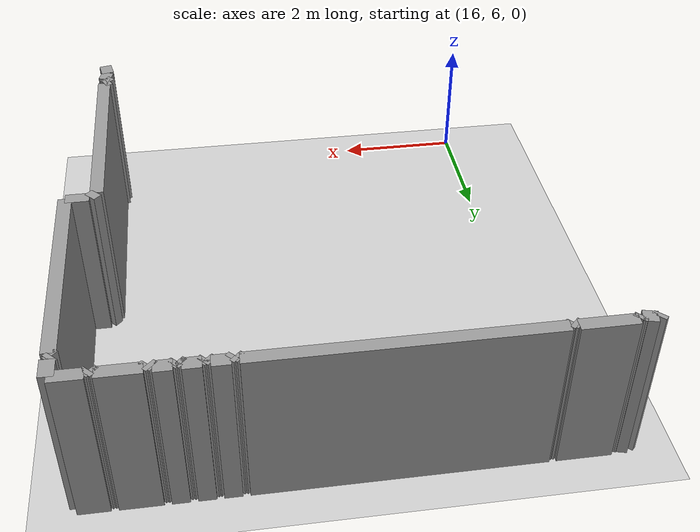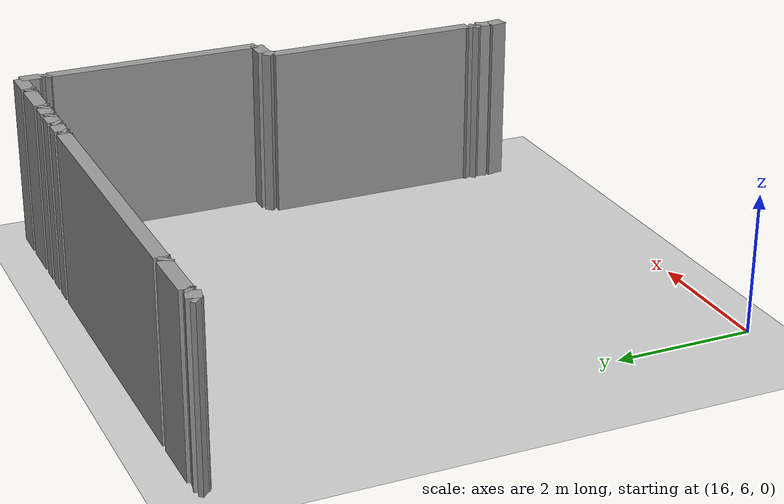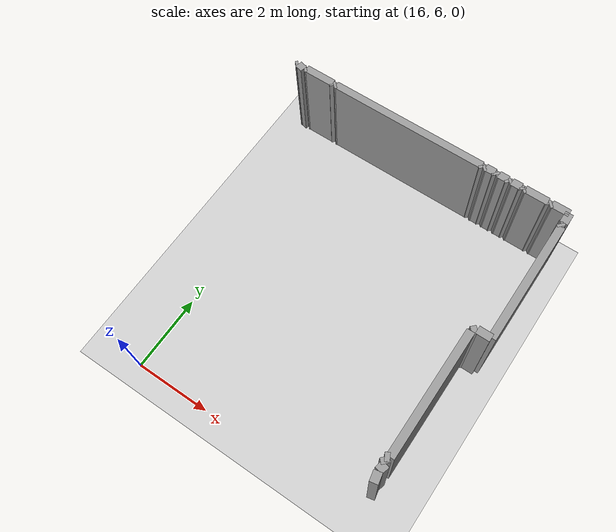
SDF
<sdf version="1.4">
 <world name="1_wall">
  <model name="ground_plane">
   <static>1</static>
   <link name="link">
    <collision name="collision">
     <geometry><plane><normal>0 0 1</normal><size>1000 1000</size></plane></geometry>
     <surface><friction><ode><mu>100</mu><mu2>50</mu2></ode></friction></surface>
    </collision>
    <visual name="visual">
     <cast_shadows>0</cast_shadows>
     <geometry><plane><normal>0 0 1</normal><size>10000 10000</size></plane></geometry>
     <material>
      <script><uri>file://media/materials/scripts/gazebo.material</uri><name>Gazebo/Grey</name></script>
     </material>
    </visual>
    <velocity_decay><linear>0</linear><angular>0</angular></velocity_decay>
   </link>
  </model>
  <model name="Wall_464">
   <static>1</static>
   <link name="Wall_464">
    <collision name="Wall_Collision_464">
     <geometry><box><size>0.0707106781186545 0.2 2.5</size></box></geometry>
     <pose>0 0 1.25 0 -0 0</pose>
    </collision>
    <visual name="Wall_Visual_464">
     <pose>0 0 1.25 0 -0 0</pose>
     <geometry><box><size>0.0707106781186545 0.2 2.5</size></box></geometry>
     <material>
      <script><uri>file://media/materials/scripts/gazebo.material</uri><name>Gazebo/Grey</name></script>
     </material>
    </visual>
    <velocity_decay><linear>0</linear><angular>0</angular></velocity_decay>
    <pose>15.175 13.975000000000001 0 0 0 0.7853981633974305</pose>
   </link>
  </model>
  <model name="Wall_465">
   <static>1</static>
   <link name="Wall_465">
    <collision name="Wall_Collision_465">
     <geometry><box><size>0.20615528128088206 0.2 2.5</size></box></geometry>
     <pose>0 0 1.25 0 -0 0</pose>
    </collision>
    <visual name="Wall_Visual_465">
     <pose>0 0 1.25 0 -0 0</pose>
     <geometry><box><size>0.20615528128088206 0.2 2.5</size></box></geometry>
     <material>
      <script><uri>file://media/materials/scripts/gazebo.material</uri><name>Gazebo/Grey</name></script>
     </material>
    </visual>
    <velocity_decay><linear>0</linear><angular>0</angular></velocity_decay>
    <pose>15.3 13.975000000000001 0 0 0 -0.24497866312685998</pose>
   </link>
  </model>
  <model name="Wall_466">
   <static>1</static>
   <link name="Wall_466">
    <collision name="Wall_Collision_466">
     <geometry><box><size>0.0707106781186545 0.2 2.5</size></box></geometry>
     <pose>0 0 1.25 0 -0 0</pose>
    </collision>
    <visual name="Wall_Visual_466">
     <pose>0 0 1.25 0 -0 0</pose>
     <geometry><box><size>0.0707106781186545 0.2 2.5</size></box></geometry>
     <material>
      <script><uri>file://media/materials/scripts/gazebo.material</uri><name>Gazebo/Grey</name></script>
     </material>
    </visual>
    <velocity_decay><linear>0</linear><angular>0</angular></velocity_decay>
    <pose>15.425 13.975000000000001 0 0 0 0.7853981633974305</pose>
   </link>
  </model>
  <model name="Wall_467">
   <static>1</static>
   <link name="Wall_467">
    <collision name="Wall_Collision_467">
     <geometry><box><size>0.7999999999999989 0.2 2.5</size></box></geometry>
     <pose>0 0 1.25 0 -0 0</pose>
    </collision>
    <visual name="Wall_Visual_467">
     <pose>0 0 1.25 0 -0 0</pose>
     <geometry><box><size>0.7999999999999989 0.2 2.5</size></box></geometry>
     <material>
      <script><uri>file://media/materials/scripts/gazebo.material</uri><name>Gazebo/Grey</name></script>
     </material>
    </visual>
    <velocity_decay><linear>0</linear><angular>0</angular></velocity_decay>
    <pose>15.850000000000001 14.0 0 0 0 0.0</pose>
   </link>
  </model>
  <model name="Wall_468">
   <static>1</static>
   <link name="Wall_468">
    <collision name="Wall_Collision_468">
     <geometry><box><size>0.0707106781186545 0.2 2.5</size></box></geometry>
     <pose>0 0 1.25 0 -0 0</pose>
    </collision>
    <visual name="Wall_Visual_468">
     <pose>0 0 1.25 0 -0 0</pose>
     <geometry><box><size>0.0707106781186545 0.2 2.5</size></box></geometry>
     <material>
      <script><uri>file://media/materials/scripts/gazebo.material</uri><name>Gazebo/Grey</name></script>
     </material>
    </visual>
    <velocity_decay><linear>0</linear><angular>0</angular></velocity_decay>
    <pose>16.275 13.975000000000001 0 0 0 -0.7853981633974305</pose>
   </link>
  </model>
  <model name="Wall_469">
   <static>1</static>
   <link name="Wall_469">
    <collision name="Wall_Collision_469">
     <geometry><box><size>0.0707106781186545 0.2 2.5</size></box></geometry>
     <pose>0 0 1.25 0 -0 0</pose>
    </collision>
    <visual name="Wall_Visual_469">
     <pose>0 0 1.25 0 -0 0</pose>
     <geometry><box><size>0.0707106781186545 0.2 2.5</size></box></geometry>
     <material>
      <script><uri>file://media/materials/scripts/gazebo.material</uri><name>Gazebo/Grey</name></script>
     </material>
    </visual>
    <velocity_decay><linear>0</linear><angular>0</angular></velocity_decay>
    <pose>16.325000000000003 13.975000000000001 0 0 0 0.7853981633974305</pose>
   </link>
  </model>
  <model name="Wall_470">
   <static>1</static>
   <link name="Wall_470">
    <collision name="Wall_Collision_470">
     <geometry><box><size>4.149999999999999 0.2 2.5</size></box></geometry>
     <pose>0 0 1.25 0 -0 0</pose>
    </collision>
    <visual name="Wall_Visual_470">
     <pose>0 0 1.25 0 -0 0</pose>
     <geometry><box><size>4.149999999999999 0.2 2.5</size></box></geometry>
     <material>
      <script><uri>file://media/materials/scripts/gazebo.material</uri><name>Gazebo/Grey</name></script>
     </material>
    </visual>
    <velocity_decay><linear>0</linear><angular>0</angular></velocity_decay>
    <pose>18.425 14.0 0 0 0 0.0</pose>
   </link>
  </model>
  <model name="Wall_471">
   <static>1</static>
   <link name="Wall_471">
    <collision name="Wall_Collision_471">
     <geometry><box><size>0.0707106781186545 0.2 2.5</size></box></geometry>
     <pose>0 0 1.25 0 -0 0</pose>
    </collision>
    <visual name="Wall_Visual_471">
     <pose>0 0 1.25 0 -0 0</pose>
     <geometry><box><size>0.0707106781186545 0.2 2.5</size></box></geometry>
     <material>
      <script><uri>file://media/materials/scripts/gazebo.material</uri><name>Gazebo/Grey</name></script>
     </material>
    </visual>
    <velocity_decay><linear>0</linear><angular>0</angular></velocity_decay>
    <pose>20.525 13.975000000000001 0 0 0 -0.7853981633974305</pose>
   </link>
  </model>
  <model name="Wall_472">
   <static>1</static>
   <link name="Wall_472">
    <collision name="Wall_Collision_472">
     <geometry><box><size>0.0707106781186545 0.2 2.5</size></box></geometry>
     <pose>0 0 1.25 0 -0 0</pose>
    </collision>
    <visual name="Wall_Visual_472">
     <pose>0 0 1.25 0 -0 0</pose>
     <geometry><box><size>0.0707106781186545 0.2 2.5</size></box></geometry>
     <material>
      <script><uri>file://media/materials/scripts/gazebo.material</uri><name>Gazebo/Grey</name></script>
     </material>
    </visual>
    <velocity_decay><linear>0</linear><angular>0</angular></velocity_decay>
    <pose>20.575000000000003 13.975000000000001 0 0 0 0.7853981633974305</pose>
   </link>
  </model>
  <model name="Wall_473">
   <static>1</static>
   <link name="Wall_473">
    <collision name="Wall_Collision_473">
     <geometry><box><size>0.25 0.2 2.5</size></box></geometry>
     <pose>0 0 1.25 0 -0 0</pose>
    </collision>
    <visual name="Wall_Visual_473">
     <pose>0 0 1.25 0 -0 0</pose>
     <geometry><box><size>0.25 0.2 2.5</size></box></geometry>
     <material>
      <script><uri>file://media/materials/scripts/gazebo.material</uri><name>Gazebo/Grey</name></script>
     </material>
    </visual>
    <velocity_decay><linear>0</linear><angular>0</angular></velocity_decay>
    <pose>20.725 14.0 0 0 0 0.0</pose>
   </link>
  </model>
  <model name="Wall_474">
   <static>1</static>
   <link name="Wall_474">
    <collision name="Wall_Collision_474">
     <geometry><box><size>0.0707106781186545 0.2 2.5</size></box></geometry>
     <pose>0 0 1.25 0 -0 0</pose>
    </collision>
    <visual name="Wall_Visual_474">
     <pose>0 0 1.25 0 -0 0</pose>
     <geometry><box><size>0.0707106781186545 0.2 2.5</size></box></geometry>
     <material>
      <script><uri>file://media/materials/scripts/gazebo.material</uri><name>Gazebo/Grey</name></script>
     </material>
    </visual>
    <velocity_decay><linear>0</linear><angular>0</angular></velocity_decay>
    <pose>20.875 13.975000000000001 0 0 0 -0.7853981633974305</pose>
   </link>
  </model>
  <model name="Wall_475">
   <static>1</static>
   <link name="Wall_475">
    <collision name="Wall_Collision_475">
     <geometry><box><size>0.0707106781186545 0.2 2.5</size></box></geometry>
     <pose>0 0 1.25 0 -0 0</pose>
    </collision>
    <visual name="Wall_Visual_475">
     <pose>0 0 1.25 0 -0 0</pose>
     <geometry><box><size>0.0707106781186545 0.2 2.5</size></box></geometry>
     <material>
      <script><uri>file://media/materials/scripts/gazebo.material</uri><name>Gazebo/Grey</name></script>
     </material>
    </visual>
    <velocity_decay><linear>0</linear><angular>0</angular></velocity_decay>
    <pose>20.925000000000004 13.975000000000001 0 0 0 0.7853981633974305</pose>
   </link>
  </model>
  <model name="Wall_476">
   <static>1</static>
   <link name="Wall_476">
    <collision name="Wall_Collision_476">
     <geometry><box><size>0.25 0.2 2.5</size></box></geometry>
     <pose>0 0 1.25 0 -0 0</pose>
    </collision>
    <visual name="Wall_Visual_476">
     <pose>0 0 1.25 0 -0 0</pose>
     <geometry><box><size>0.25 0.2 2.5</size></box></geometry>
     <material>
      <script><uri>file://media/materials/scripts/gazebo.material</uri><name>Gazebo/Grey</name></script>
     </material>
    </visual>
    <velocity_decay><linear>0</linear><angular>0</angular></velocity_decay>
    <pose>21.075000000000003 14.0 0 0 0 0.0</pose>
   </link>
  </model>
  <model name="Wall_477">
   <static>1</static>
   <link name="Wall_477">
    <collision name="Wall_Collision_477">
     <geometry><box><size>0.07071067811865199 0.2 2.5</size></box></geometry>
     <pose>0 0 1.25 0 -0 0</pose>
    </collision>
    <visual name="Wall_Visual_477">
     <pose>0 0 1.25 0 -0 0</pose>
     <geometry><box><size>0.07071067811865199 0.2 2.5</size></box></geometry>
     <material>
      <script><uri>file://media/materials/scripts/gazebo.material</uri><name>Gazebo/Grey</name></script>
     </material>
    </visual>
    <velocity_decay><linear>0</linear><angular>0</angular></velocity_decay>
    <pose>21.225 13.975000000000001 0 0 0 -0.785398163397466</pose>
   </link>
  </model>
  <model name="Wall_478">
   <static>1</static>
   <link name="Wall_478">
    <collision name="Wall_Collision_478">
     <geometry><box><size>0.0707106781186545 0.2 2.5</size></box></geometry>
     <pose>0 0 1.25 0 -0 0</pose>
    </collision>
    <visual name="Wall_Visual_478">
     <pose>0 0 1.25 0 -0 0</pose>
     <geometry><box><size>0.0707106781186545 0.2 2.5</size></box></geometry>
     <material>
      <script><uri>file://media/materials/scripts/gazebo.material</uri><name>Gazebo/Grey</name></script>
     </material>
    </visual>
    <velocity_decay><linear>0</linear><angular>0</angular></velocity_decay>
    <pose>21.275 13.975000000000001 0 0 0 0.7853981633974305</pose>
   </link>
  </model>
  <model name="Wall_479">
   <static>1</static>
   <link name="Wall_479">
    <collision name="Wall_Collision_479">
     <geometry><box><size>0.25 0.2 2.5</size></box></geometry>
     <pose>0 0 1.25 0 -0 0</pose>
    </collision>
    <visual name="Wall_Visual_479">
     <pose>0 0 1.25 0 -0 0</pose>
     <geometry><box><size>0.25 0.2 2.5</size></box></geometry>
     <material>
      <script><uri>file://media/materials/scripts/gazebo.material</uri><name>Gazebo/Grey</name></script>
     </material>
    </visual>
    <velocity_decay><linear>0</linear><angular>0</angular></velocity_decay>
    <pose>21.425 14.0 0 0 0 0.0</pose>
   </link>
  </model>
  <model name="Wall_480">
   <static>1</static>
   <link name="Wall_480">
    <collision name="Wall_Collision_480">
     <geometry><box><size>0.0707106781186545 0.2 2.5</size></box></geometry>
     <pose>0 0 1.25 0 -0 0</pose>
    </collision>
    <visual name="Wall_Visual_480">
     <pose>0 0 1.25 0 -0 0</pose>
     <geometry><box><size>0.0707106781186545 0.2 2.5</size></box></geometry>
     <material>
      <script><uri>file://media/materials/scripts/gazebo.material</uri><name>Gazebo/Grey</name></script>
     </material>
    </visual>
    <velocity_decay><linear>0</linear><angular>0</angular></velocity_decay>
    <pose>21.575000000000003 13.975000000000001 0 0 0 -0.7853981633974305</pose>
   </link>
  </model>
  <model name="Wall_481">
   <static>1</static>
   <link name="Wall_481">
    <collision name="Wall_Collision_481">
     <geometry><box><size>0.0707106781186545 0.2 2.5</size></box></geometry>
     <pose>0 0 1.25 0 -0 0</pose>
    </collision>
    <visual name="Wall_Visual_481">
     <pose>0 0 1.25 0 -0 0</pose>
     <geometry><box><size>0.0707106781186545 0.2 2.5</size></box></geometry>
     <material>
      <script><uri>file://media/materials/scripts/gazebo.material</uri><name>Gazebo/Grey</name></script>
     </material>
    </visual>
    <velocity_decay><linear>0</linear><angular>0</angular></velocity_decay>
    <pose>21.625 13.975000000000001 0 0 0 0.7853981633974305</pose>
   </link>
  </model>
  <model name="Wall_482">
   <static>1</static>
   <link name="Wall_482">
    <collision name="Wall_Collision_482">
     <geometry><box><size>0.5999999999999979 0.2 2.5</size></box></geometry>
     <pose>0 0 1.25 0 -0 0</pose>
    </collision>
    <visual name="Wall_Visual_482">
     <pose>0 0 1.25 0 -0 0</pose>
     <geometry><box><size>0.5999999999999979 0.2 2.5</size></box></geometry>
     <material>
      <script><uri>file://media/materials/scripts/gazebo.material</uri><name>Gazebo/Grey</name></script>
     </material>
    </visual>
    <velocity_decay><linear>0</linear><angular>0</angular></velocity_decay>
    <pose>21.950000000000003 14.0 0 0 0 0.0</pose>
   </link>
  </model>
  <model name="Wall_483">
   <static>1</static>
   <link name="Wall_483">
    <collision name="Wall_Collision_483">
     <geometry><box><size>0.0707106781186545 0.2 2.5</size></box></geometry>
     <pose>0 0 1.25 0 -0 0</pose>
    </collision>
    <visual name="Wall_Visual_483">
     <pose>0 0 1.25 0 -0 0</pose>
     <geometry><box><size>0.0707106781186545 0.2 2.5</size></box></geometry>
     <material>
      <script><uri>file://media/materials/scripts/gazebo.material</uri><name>Gazebo/Grey</name></script>
     </material>
    </visual>
    <velocity_decay><linear>0</linear><angular>0</angular></velocity_decay>
    <pose>22.275 13.975000000000001 0 0 0 -0.7853981633974305</pose>
   </link>
  </model>
  <model name="Wall_484">
   <static>1</static>
   <link name="Wall_484">
    <collision name="Wall_Collision_484">
     <geometry><box><size>0.0707106781186545 0.2 2.5</size></box></geometry>
     <pose>0 0 1.25 0 -0 0</pose>
    </collision>
    <visual name="Wall_Visual_484">
     <pose>0 0 1.25 0 -0 0</pose>
     <geometry><box><size>0.0707106781186545 0.2 2.5</size></box></geometry>
     <material>
      <script><uri>file://media/materials/scripts/gazebo.material</uri><name>Gazebo/Grey</name></script>
     </material>
    </visual>
    <velocity_decay><linear>0</linear><angular>0</angular></velocity_decay>
    <pose>22.325000000000003 13.975000000000001 0 0 0 0.7853981633974305</pose>
   </link>
  </model>
  <model name="Wall_485">
   <static>1</static>
   <link name="Wall_485">
    <collision name="Wall_Collision_485">
     <geometry><box><size>0.4499999999999993 0.2 2.5</size></box></geometry>
     <pose>0 0 1.25 0 -0 0</pose>
    </collision>
    <visual name="Wall_Visual_485">
     <pose>0 0 1.25 0 -0 0</pose>
     <geometry><box><size>0.4499999999999993 0.2 2.5</size></box></geometry>
     <material>
      <script><uri>file://media/materials/scripts/gazebo.material</uri><name>Gazebo/Grey</name></script>
     </material>
    </visual>
    <velocity_decay><linear>0</linear><angular>0</angular></velocity_decay>
    <pose>22.575000000000003 14.0 0 0 0 0.0</pose>
   </link>
  </model>
  <model name="Wall_486">
   <static>1</static>
   <link name="Wall_486">
    <collision name="Wall_Collision_486">
     <geometry><box><size>0.29999999999999893 0.2 2.5</size></box></geometry>
     <pose>0 0 1.25 0 -0 0</pose>
    </collision>
    <visual name="Wall_Visual_486">
     <pose>0 0 1.25 0 -0 0</pose>
     <geometry><box><size>0.29999999999999893 0.2 2.5</size></box></geometry>
     <material>
      <script><uri>file://media/materials/scripts/gazebo.material</uri><name>Gazebo/Grey</name></script>
     </material>
    </visual>
    <velocity_decay><linear>0</linear><angular>0</angular></velocity_decay>
    <pose>22.8 13.850000000000001 0 0 0 -1.5707963267948966</pose>
   </link>
  </model>
  <model name="Wall_487">
   <static>1</static>
   <link name="Wall_487">
    <collision name="Wall_Collision_487">
     <geometry><box><size>0.07071067811865576 0.2 2.5</size></box></geometry>
     <pose>0 0 1.25 0 -0 0</pose>
    </collision>
    <visual name="Wall_Visual_487">
     <pose>0 0 1.25 0 -0 0</pose>
     <geometry><box><size>0.07071067811865576 0.2 2.5</size></box></geometry>
     <material>
      <script><uri>file://media/materials/scripts/gazebo.material</uri><name>Gazebo/Grey</name></script>
     </material>
    </visual>
    <velocity_decay><linear>0</linear><angular>0</angular></velocity_decay>
    <pose>22.775 13.675 0 0 0 -2.356194490192345</pose>
   </link>
  </model>
  <model name="Wall_488">
   <static>1</static>
   <link name="Wall_488">
    <collision name="Wall_Collision_488">
     <geometry><box><size>0.0707106781186545 0.2 2.5</size></box></geometry>
     <pose>0 0 1.25 0 -0 0</pose>
    </collision>
    <visual name="Wall_Visual_488">
     <pose>0 0 1.25 0 -0 0</pose>
     <geometry><box><size>0.0707106781186545 0.2 2.5</size></box></geometry>
     <material>
      <script><uri>file://media/materials/scripts/gazebo.material</uri><name>Gazebo/Grey</name></script>
     </material>
    </visual>
    <velocity_decay><linear>0</linear><angular>0</angular></velocity_decay>
    <pose>22.775 13.625 0 0 0 -0.7853981633974305</pose>
   </link>
  </model>
  <model name="Wall_489">
   <static>1</static>
   <link name="Wall_489">
    <collision name="Wall_Collision_489">
     <geometry><box><size>3.200000000000001 0.2 2.5</size></box></geometry>
     <pose>0 0 1.25 0 -0 0</pose>
    </collision>
    <visual name="Wall_Visual_489">
     <pose>0 0 1.25 0 -0 0</pose>
     <geometry><box><size>3.200000000000001 0.2 2.5</size></box></geometry>
     <material>
      <script><uri>file://media/materials/scripts/gazebo.material</uri><name>Gazebo/Grey</name></script>
     </material>
    </visual>
    <velocity_decay><linear>0</linear><angular>0</angular></velocity_decay>
    <pose>22.8 12.0 0 0 0 -1.5707963267948966</pose>
   </link>
  </model>
  <model name="Wall_490">
   <static>1</static>
   <link name="Wall_490">
    <collision name="Wall_Collision_490">
     <geometry><box><size>0.34999999999999787 0.2 2.5</size></box></geometry>
     <pose>0 0 1.25 0 -0 0</pose>
    </collision>
    <visual name="Wall_Visual_490">
     <pose>0 0 1.25 0 -0 0</pose>
     <geometry><box><size>0.34999999999999787 0.2 2.5</size></box></geometry>
     <material>
      <script><uri>file://media/materials/scripts/gazebo.material</uri><name>Gazebo/Grey</name></script>
     </material>
    </visual>
    <velocity_decay><linear>0</linear><angular>0</angular></velocity_decay>
    <pose>22.625 10.4 0 0 0 3.141592653589793</pose>
   </link>
  </model>
  <model name="Wall_491">
   <static>1</static>
   <link name="Wall_491">
    <collision name="Wall_Collision_491">
     <geometry><box><size>0.14142135623731025 0.2 2.5</size></box></geometry>
     <pose>0 0 1.25 0 -0 0</pose>
    </collision>
    <visual name="Wall_Visual_491">
     <pose>0 0 1.25 0 -0 0</pose>
     <geometry><box><size>0.14142135623731025 0.2 2.5</size></box></geometry>
     <material>
      <script><uri>file://media/materials/scripts/gazebo.material</uri><name>Gazebo/Grey</name></script>
     </material>
    </visual>
    <velocity_decay><linear>0</linear><angular>0</angular></velocity_decay>
    <pose>22.400000000000002 10.350000000000001 0 0 0 -2.3561944901923537</pose>
   </link>
  </model>
  <model name="Wall_492">
   <static>1</static>
   <link name="Wall_492">
    <collision name="Wall_Collision_492">
     <geometry><box><size>3.2 0.2 2.5</size></box></geometry>
     <pose>0 0 1.25 0 -0 0</pose>
    </collision>
    <visual name="Wall_Visual_492">
     <pose>0 0 1.25 0 -0 0</pose>
     <geometry><box><size>3.2 0.2 2.5</size></box></geometry>
     <material>
      <script><uri>file://media/materials/scripts/gazebo.material</uri><name>Gazebo/Grey</name></script>
     </material>
    </visual>
    <velocity_decay><linear>0</linear><angular>0</angular></velocity_decay>
    <pose>22.35 8.700000000000001 0 0 0 -1.5707963267948966</pose>
   </link>
  </model>
  <model name="Wall_493">
   <static>1</static>
   <link name="Wall_493">
    <collision name="Wall_Collision_493">
     <geometry><box><size>0.11180339887499069 0.2 2.5</size></box></geometry>
     <pose>0 0 1.25 0 -0 0</pose>
    </collision>
    <visual name="Wall_Visual_493">
     <pose>0 0 1.25 0 -0 0</pose>
     <geometry><box><size>0.11180339887499069 0.2 2.5</size></box></geometry>
     <material>
      <script><uri>file://media/materials/scripts/gazebo.material</uri><name>Gazebo/Grey</name></script>
     </material>
    </visual>
    <velocity_decay><linear>0</linear><angular>0</angular></velocity_decay>
    <pose>22.3 7.075000000000001 0 0 0 -2.677945044588994</pose>
   </link>
  </model>
  <model name="Wall_494">
   <static>1</static>
   <link name="Wall_494">
    <collision name="Wall_Collision_494">
     <geometry><box><size>0.1414213562373109 0.2 2.5</size></box></geometry>
     <pose>0 0 1.25 0 -0 0</pose>
    </collision>
    <visual name="Wall_Visual_494">
     <pose>0 0 1.25 0 -0 0</pose>
     <geometry><box><size>0.1414213562373109 0.2 2.5</size></box></geometry>
     <material>
      <script><uri>file://media/materials/scripts/gazebo.material</uri><name>Gazebo/Grey</name></script>
     </material>
    </visual>
    <velocity_decay><linear>0</linear><angular>0</angular></velocity_decay>
    <pose>22.3 7.0 0 0 0 -0.7853981633974438</pose>
   </link>
  </model>
  <model name="Wall_495">
   <static>1</static>
   <link name="Wall_495">
    <collision name="Wall_Collision_495">
     <geometry><box><size>0.20615528128088337 0.2 2.5</size></box></geometry>
     <pose>0 0 1.25 0 -0 0</pose>
    </collision>
    <visual name="Wall_Visual_495">
     <pose>0 0 1.25 0 -0 0</pose>
     <geometry><box><size>0.20615528128088337 0.2 2.5</size></box></geometry>
     <material>
      <script><uri>file://media/materials/scripts/gazebo.material</uri><name>Gazebo/Grey</name></script>
     </material>
    </visual>
    <velocity_decay><linear>0</linear><angular>0</angular></velocity_decay>
    <pose>22.325000000000003 6.85 0 0 0 -1.815774989921764</pose>
   </link>
  </model>
  <model name="Wall_496">
   <static>1</static>
   <link name="Wall_496">
    <collision name="Wall_Collision_496">
     <geometry><box><size>0.25495097567963937 0.2 2.5</size></box></geometry>
     <pose>0 0 1.25 0 -0 0</pose>
    </collision>
    <visual name="Wall_Visual_496">
     <pose>0 0 1.25 0 -0 0</pose>
     <geometry><box><size>0.25495097567963937 0.2 2.5</size></box></geometry>
     <material>
      <script><uri>file://media/materials/scripts/gazebo.material</uri><name>Gazebo/Grey</name></script>
     </material>
    </visual>
    <velocity_decay><linear>0</linear><angular>0</angular></velocity_decay>
    <pose>22.325000000000003 6.625 0 0 0 -1.3734007669450132</pose>
   </link>
  </model>
 </world>
</sdf>
